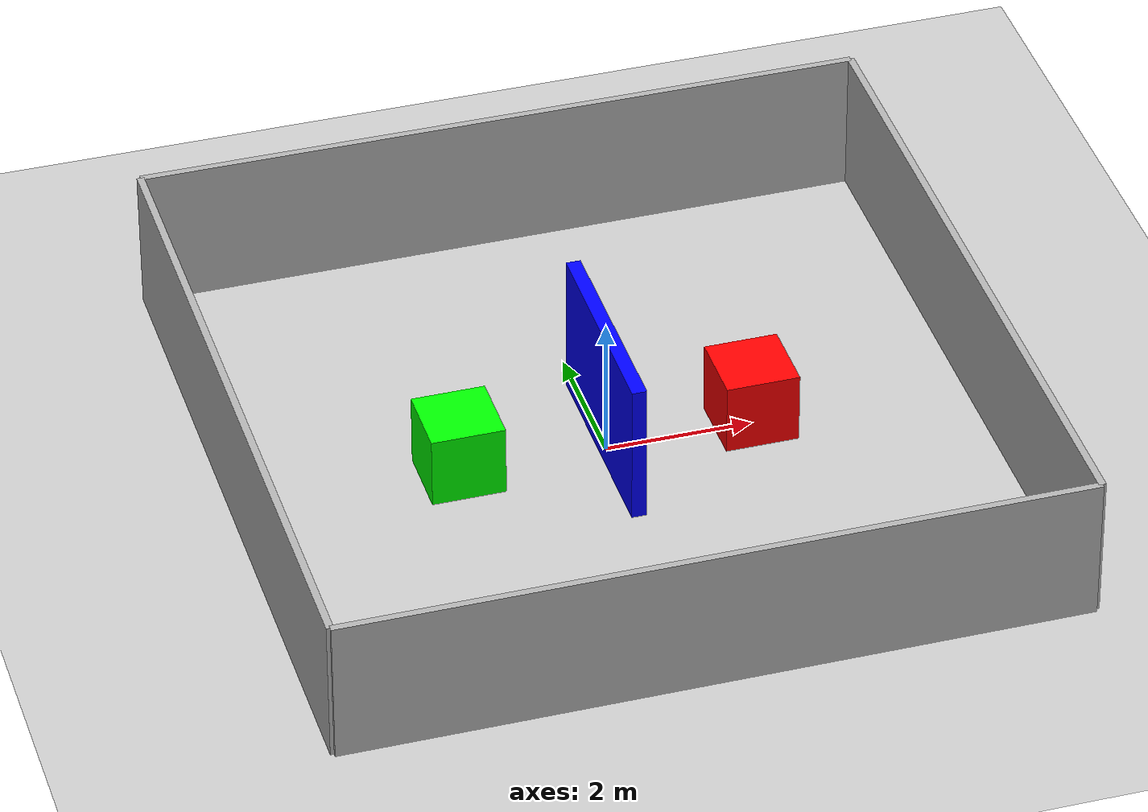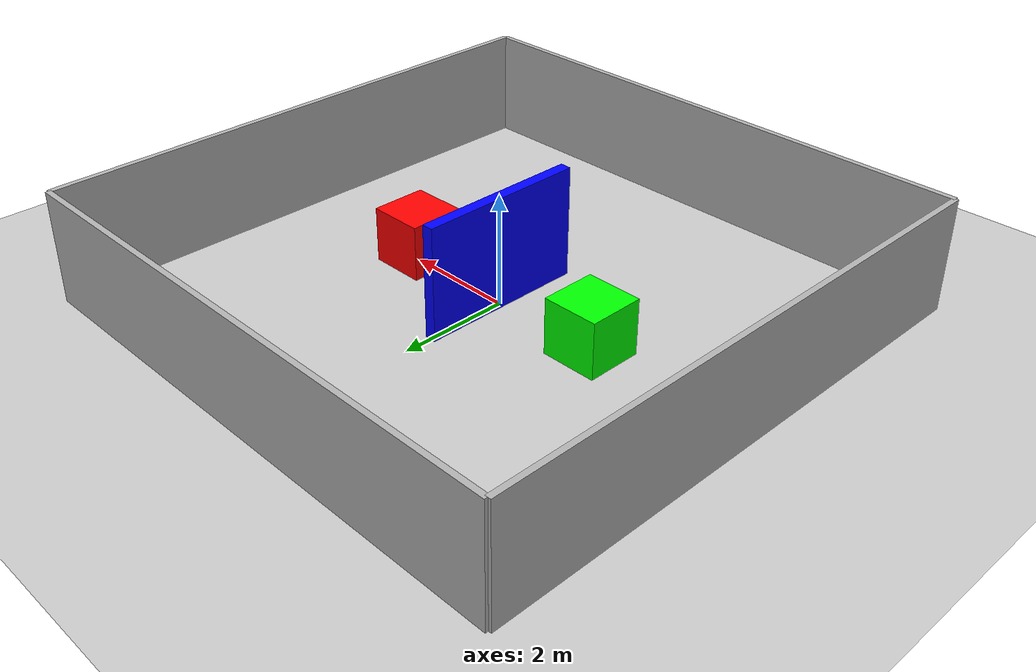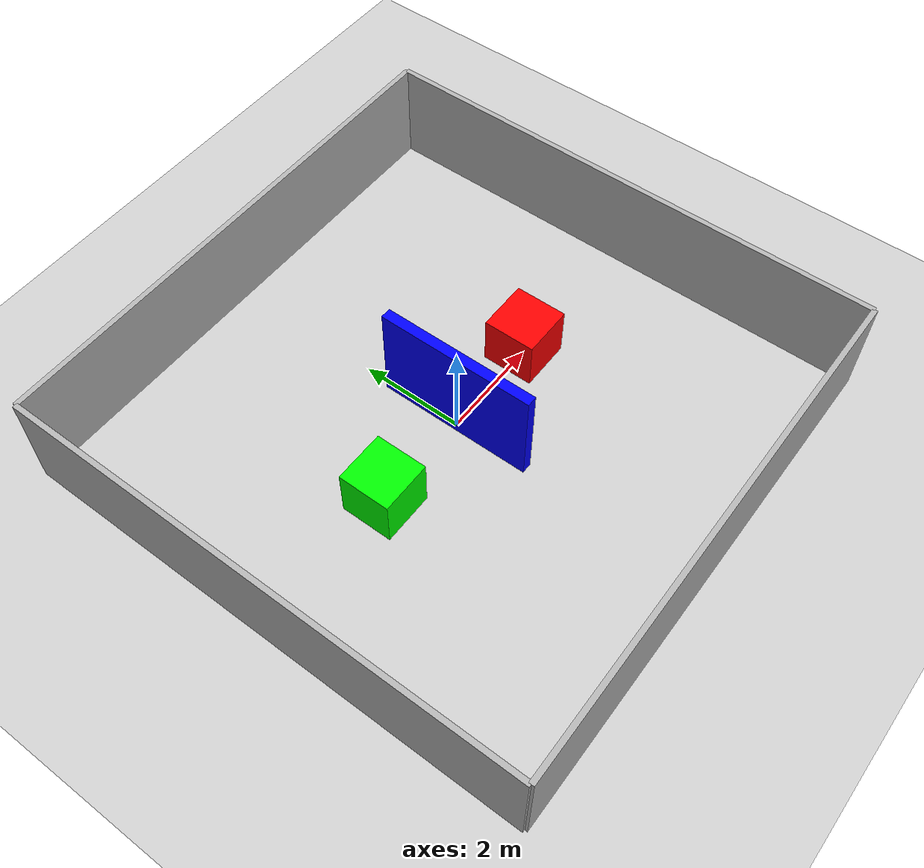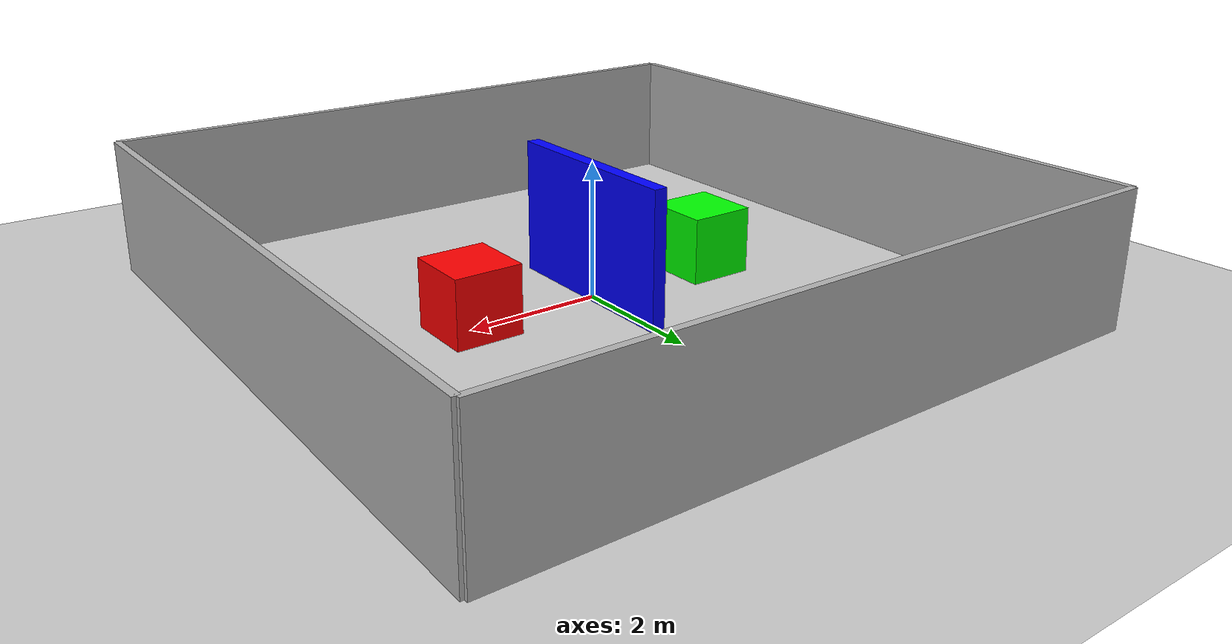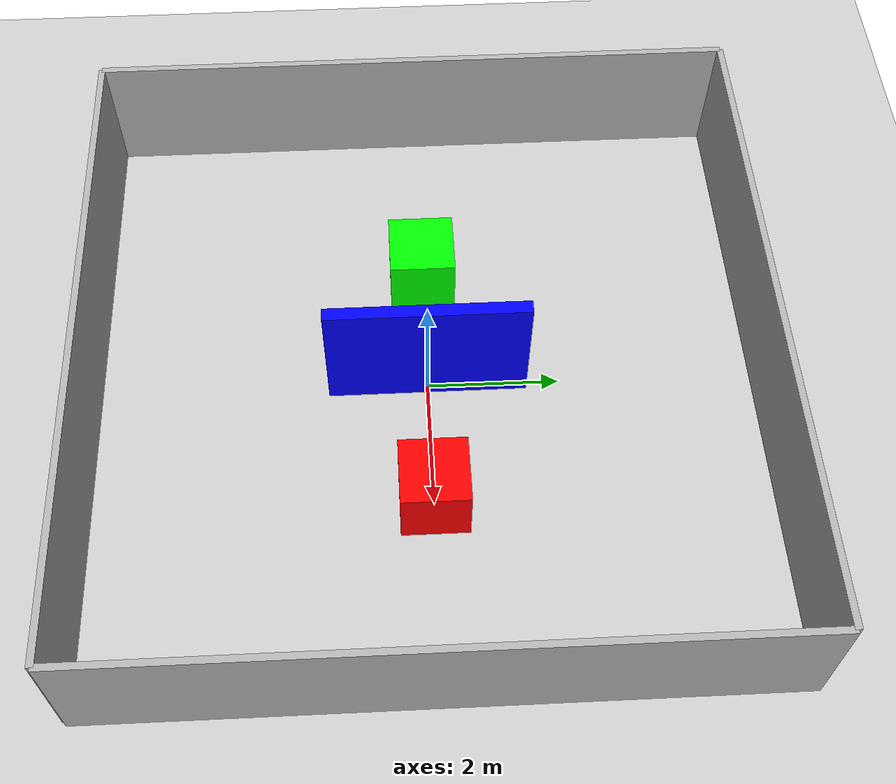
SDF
<sdf version="1.8">
 <world name="quadcopter">
  <physics name="1ms" type="ignored">
   <max_step_size>0.001</max_step_size>
   <real_time_factor>1.0</real_time_factor>
  </physics>
  <plugin filename="ignition-gazebo-physics-system" name="gz::sim::systems::Physics"/>
  <plugin filename="ignition-gazebo-scene-broadcaster-system" name="gz::sim::systems::SceneBroadcaster"/>
  <plugin filename="ignition-gazebo-user-commands-system" name="gz::sim::systems::UserCommands"/>
  <plugin filename="ignition-gazebo-sensors-system" name="gz::sim::systems::Sensors">
   <render_engine>ogre2</render_engine>
  </plugin>
  <plugin filename="libignition-gazebo-wind-effects-system.so" name="gz::sim::systems::WindEffects"/>
  <scene>
   <ambient>1.0 1.0 1.0 1.0</ambient>
   <background>0.8 0.8 0.8 1.0</background>
   <grid>true</grid>
   <wind><linear_velocity>0.0 -0.5 0.0</linear_velocity></wind>
  </scene>
  <light type="directional" name="sun">
   <pose>0 0 10 0 0 0</pose>
   <diffuse>1.0 1.0 1.0 1</diffuse>
   <specular>0.5 0.5 0.5 1</specular>
   <direction>-0.5 0.1 -0.9</direction>
  </light>
  <model name="ground_plane">
   <static>true</static>
   <link name="link">
    <collision name="c"><geometry><plane><normal>0 0 1</normal><size>100 100</size></plane></geometry></collision>
    <visual name="v">
     <geometry><plane><normal>0 0 1</normal><size>100 100</size></plane></geometry>
     <material><ambient>0.8 0.8 0.8 1</ambient><diffuse>0.8 0.8 0.8 1</diffuse></material>
    </visual>
   </link>
  </model>
  <model name="arena_walls">
   <static>true</static>
   <link name="walls">
    <visual name="f">
     <pose>5 0 1 0 0 0</pose>
     <geometry><box><size>0.1 10 2</size></box></geometry>
     <material><ambient>0.5 0.5 0.5 1</ambient><diffuse>0.7 0.7 0.7 1</diffuse></material>
    </visual>
    <collision name="fc"><pose>5 0 1 0 0 0</pose><geometry><box><size>0.1 10 2</size></box></geometry></collision>
    <visual name="b">
     <pose>-5 0 1 0 0 0</pose>
     <geometry><box><size>0.1 10 2</size></box></geometry>
     <material><ambient>0.5 0.5 0.5 1</ambient><diffuse>0.7 0.7 0.7 1</diffuse></material>
    </visual>
    <collision name="bc">
     <pose>-5 0 1 0 0 0</pose>
     <geometry><box><size>0.1 10 2</size></box></geometry>
    </collision>
    <visual name="l">
     <pose>0 5 1 0 0 0</pose>
     <geometry><box><size>10 0.1 2</size></box></geometry>
     <material><ambient>0.5 0.5 0.5 1</ambient><diffuse>0.7 0.7 0.7 1</diffuse></material>
    </visual>
    <collision name="lc"><pose>0 5 1 0 0 0</pose><geometry><box><size>10 0.1 2</size></box></geometry></collision>
    <visual name="r">
     <pose>0 -5 1 0 0 0</pose>
     <geometry><box><size>10 0.1 2</size></box></geometry>
     <material><ambient>0.5 0.5 0.5 1</ambient><diffuse>0.7 0.7 0.7 1</diffuse></material>
    </visual>
    <collision name="rc">
     <pose>0 -5 1 0 0 0</pose>
     <geometry><box><size>10 0.1 2</size></box></geometry>
    </collision>
   </link>
  </model>
  <model name="static_obstacle">
   <static>true</static>
   <pose>0 0 1.0 0 0 0</pose>
   <link name="link">
    <collision name="c"><geometry><box><size>0.2 3 2</size></box></geometry></collision>
    <visual name="v">
     <geometry><box><size>0.2 3 2</size></box></geometry>
     <material><ambient>0 0 1 1</ambient><diffuse>0 0 1 1</diffuse><emissive>0 0 0.3 1</emissive></material>
    </visual>
   </link>
  </model>
  <model name="start_table">
   <static>true</static>
   <pose>-2 0 0.5 0 0 0</pose>
   <link name="link">
    <collision name="c"><geometry><box><size>1 1 1</size></box></geometry></collision>
    <visual name="v">
     <geometry><box><size>1 1 1</size></box></geometry>
     <material><ambient>0 1 0 1</ambient><diffuse>0 1 0 1</diffuse><emissive>0 0.2 0 1</emissive></material>
    </visual>
   </link>
  </model>
  <model name="goal_table">
   <static>true</static>
   <pose>2 0 0.5 0 0 0</pose>
   <link name="link">
    <collision name="c"><geometry><box><size>1 1 1</size></box></geometry></collision>
    <visual name="v">
     <geometry><box><size>1 1 1</size></box></geometry>
     <material><ambient>1 0 0 1</ambient><diffuse>1 0 0 1</diffuse><emissive>0.2 0 0 1</emissive></material>
    </visual>
   </link>
  </model>
 </world>
</sdf>
